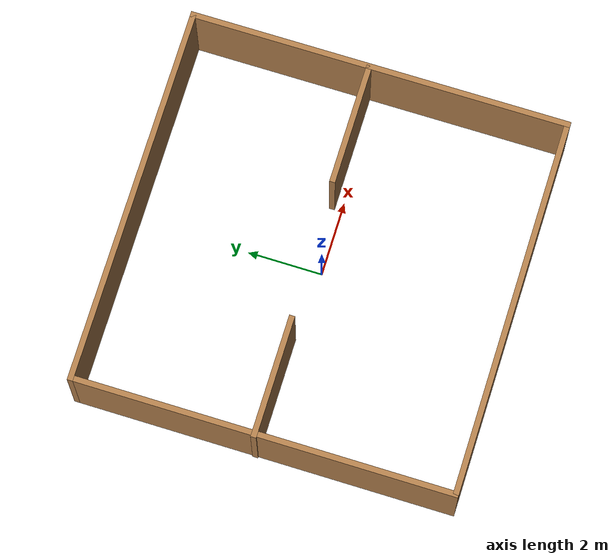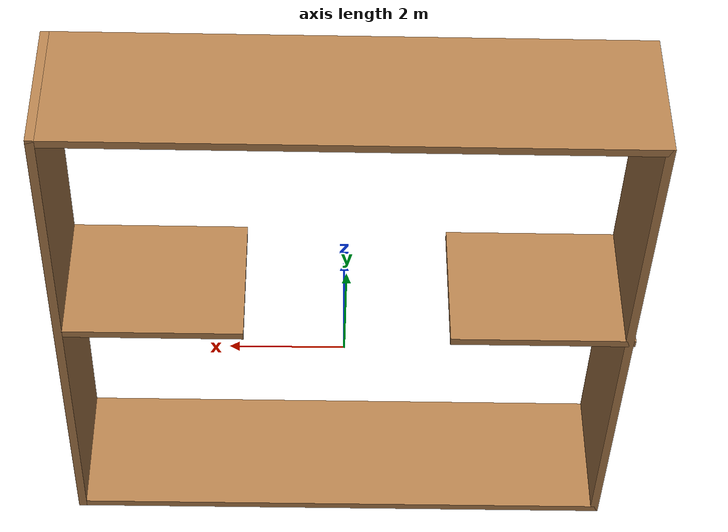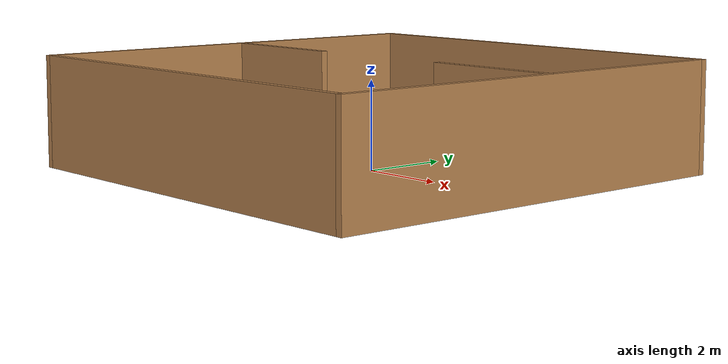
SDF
<?xml version='1.0'?>
<sdf version='1.6'>
  <model name='world'>
    <pose frame=''>-0.016034 0 0 0 -0 0</pose>
    <link name='Wall_10'>
      <collision name='Wall_10_Collision'>
        <geometry>
          <box>
            <size>3.25 0.15 2.5</size>
          </box>
        </geometry>
        <pose frame=''>0 0 1.25 0 -0 0</pose>
      </collision>
      <visual name='Wall_10_Visual'>
        <pose frame=''>0 0 1.25 0 -0 0</pose>
        <geometry>
          <box>
            <size>3.25 0.15 2.5</size>
          </box>
        </geometry>
        <material>
          <script>
            <uri>file://media/materials/scripts/gazebo.material</uri>
            <name>Gazebo/Wood</name>
          </script>
          <ambient>1 1 1 1</ambient>
        </material>
        <meta>
          <layer>0</layer>
        </meta>
      </visual>
      <pose frame=''>3.41071 0.27419 0 0 -0 3.14159</pose>
    </link>
    <link name='Wall_12'>
      <collision name='Wall_12_Collision'>
        <geometry>
          <box>
            <size>3.25 0.15 2.5</size>
          </box>
        </geometry>
        <pose frame=''>0 0 1.25 0 -0 0</pose>
      </collision>
      <visual name='Wall_12_Visual'>
        <pose frame=''>0 0 1.25 0 -0 0</pose>
        <geometry>
          <box>
            <size>3.25 0.15 2.5</size>
          </box>
        </geometry>
        <material>
          <script>
            <uri>file://media/materials/scripts/gazebo.material</uri>
            <name>Gazebo/Wood</name>
          </script>
          <ambient>1 1 1 1</ambient>
        </material>
        <meta>
          <layer>0</layer>
        </meta>
      </visual>
      <pose frame=''>-3.46604 0.203432 0 0 -0 0</pose>
    </link>
    <link name='Wall_2'>
      <collision name='Wall_2_Collision'>
        <geometry>
          <box>
            <size>10.15 0.15 2.5</size>
          </box>
        </geometry>
        <pose frame=''>0 0 1.25 0 -0 0</pose>
      </collision>
      <visual name='Wall_2_Visual'>
        <pose frame=''>0 0 1.25 0 -0 0</pose>
        <geometry>
          <box>
            <size>10.15 0.15 2.5</size>
          </box>
        </geometry>
        <material>
          <script>
            <uri>file://media/materials/scripts/gazebo.material</uri>
            <name>Gazebo/Wood</name>
          </script>
          <ambient>1 1 1 1</ambient>
        </material>
        <meta>
          <layer>0</layer>
        </meta>
      </visual>
      <pose frame=''>-4.98397 0 0 0 -0 -1.5708</pose>
    </link>
    <link name='Wall_3'>
      <collision name='Wall_3_Collision'>
        <geometry>
          <box>
            <size>10.15 0.15 2.5</size>
          </box>
        </geometry>
        <pose frame=''>0 0 1.25 0 -0 0</pose>
      </collision>
      <visual name='Wall_3_Visual'>
        <pose frame=''>0 0 1.25 0 -0 0</pose>
        <geometry>
          <box>
            <size>10.15 0.15 2.5</size>
          </box>
        </geometry>
        <material>
          <script>
            <uri>file://media/materials/scripts/gazebo.material</uri>
            <name>Gazebo/Wood</name>
          </script>
          <ambient>1 1 1 1</ambient>
        </material>
        <meta>
          <layer>0</layer>
        </meta>
      </visual>
      <pose frame=''>0.016034 -5 0 0 -0 0</pose>
    </link>
    <link name='Wall_4'>
      <collision name='Wall_4_Collision'>
        <geometry>
          <box>
            <size>10.15 0.15 2.5</size>
          </box>
        </geometry>
        <pose frame=''>0 0 1.25 0 -0 0</pose>
      </collision>
      <visual name='Wall_4_Visual'>
        <pose frame=''>0 0 1.25 0 -0 0</pose>
        <geometry>
          <box>
            <size>10.15 0.15 2.5</size>
          </box>
        </geometry>
        <material>
          <script>
            <uri>file://media/materials/scripts/gazebo.material</uri>
            <name>Gazebo/Wood</name>
          </script>
          <ambient>1 1 1 1</ambient>
        </material>
        <meta>
          <layer>0</layer>
        </meta>
      </visual>
      <pose frame=''>5.01603 0 0 0 -0 1.5708</pose>
    </link>
    <link name='Wall_5'>
      <collision name='Wall_5_Collision'>
        <geometry>
          <box>
            <size>10.15 0.15 2.5</size>
          </box>
        </geometry>
        <pose frame=''>0 0 1.25 0 -0 0</pose>
      </collision>
      <visual name='Wall_5_Visual'>
        <pose frame=''>0 0 1.25 0 -0 0</pose>
        <geometry>
          <box>
            <size>10.15 0.15 2.5</size>
          </box>
        </geometry>
        <material>
          <script>
            <uri>file://media/materials/scripts/gazebo.material</uri>
            <name>Gazebo/Wood</name>
          </script>
          <ambient>1 1 1 1</ambient>
        </material>
        <meta>
          <layer>0</layer>
        </meta>
      </visual>
      <pose frame=''>0.016034 5 0 0 -0 3.14159</pose>
    </link>
    <static>1</static>
  </model>
</sdf>
